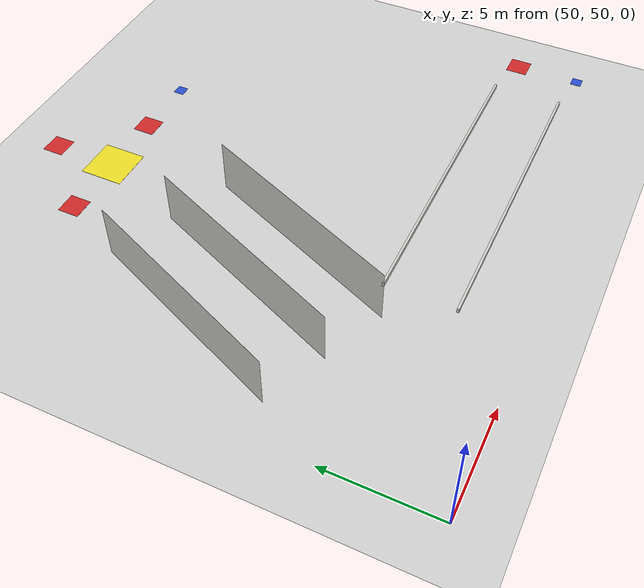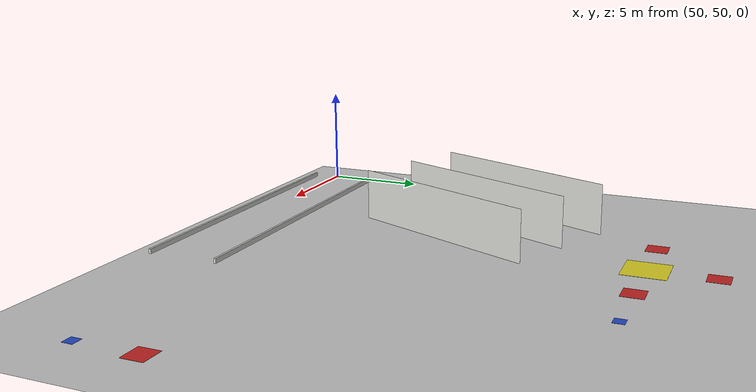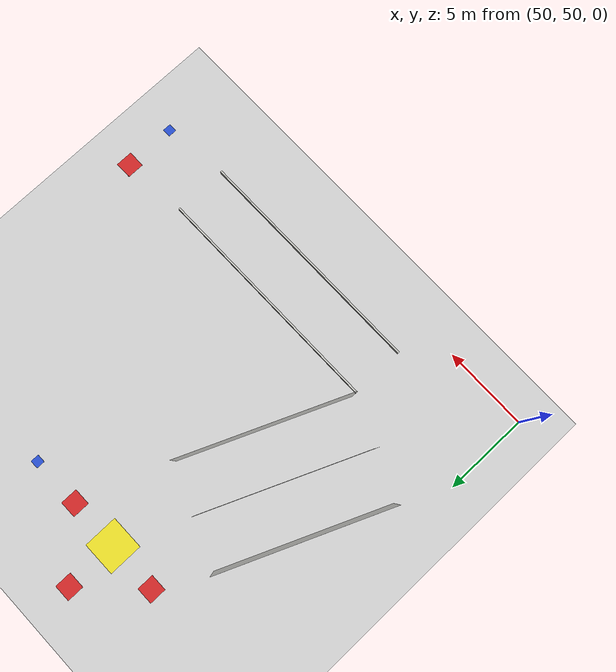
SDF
<sdf version="1.6">
 <world name="default">
  <model name="ground_plane">
   <static>1</static>
   <link name="link">
    <collision name="collision">
     <geometry><plane><normal>0 0 1</normal><size>100 100</size></plane></geometry>
     <surface><friction><ode><mu>100</mu><mu2>50</mu2></ode></friction></surface>
    </collision>
    <visual name="visual">
     <cast_shadows>0</cast_shadows>
     <geometry><plane><normal>0 0 1</normal><size>100 100</size></plane></geometry>
     <material>
      <script><uri>file://media/materials/scripts/gazebo.material</uri><name>Gazebo/Grey</name></script>
     </material>
    </visual>
   </link>
  </model>
  <model name="357">
   <pose>53.5147 62.4561 0 0 -0 0</pose>
   <link name="Wall_16">
    <collision name="Wall_16_Collision">
     <geometry><box><size>10.0198 0.001 2.5</size></box></geometry>
     <pose>0 0 1.25 0 -0 0</pose>
    </collision>
    <visual name="Wall_16_Visual">
     <pose>0 0 1.25 0 -0 0</pose>
     <geometry><box><size>10.0198 0.001 2.5</size></box></geometry>
     <material>
      <script><uri>file://media/materials/scripts/gazebo.material</uri><name>Gazebo/CeilingTiled</name></script>
      <ambient>0.435294 0.796078 0.67451 1</ambient>
     </material>
    </visual>
    <pose>0 -2e-06 0 0 -0 1.16829</pose>
   </link>
   <static>1</static>
  </model>
  <model name="357_clone">
   <pose>56.275 61.25 0 0 -0 0</pose>
   <link name="Wall_16">
    <collision name="Wall_16_Collision">
     <geometry><box><size>10.0198 0.001 2.5</size></box></geometry>
     <pose>0 0 1.25 0 -0 0</pose>
    </collision>
    <visual name="Wall_16_Visual">
     <pose>0 0 1.25 0 -0 0</pose>
     <geometry><box><size>10.0198 0.001 2.5</size></box></geometry>
     <material>
      <script><uri>file://media/materials/scripts/gazebo.material</uri><name>Gazebo/CeilingTiled</name></script>
      <ambient>0.435294 0.796078 0.67451 1</ambient>
     </material>
    </visual>
    <pose>0 -2e-06 0 0 -0 1.16829</pose>
   </link>
   <static>1</static>
  </model>
  <model name="357_clone_0">
   <pose>59.0353 60.0749 0 0 -0 0</pose>
   <link name="Wall_16">
    <collision name="Wall_16_Collision">
     <geometry><box><size>10.0198 0.001 2.5</size></box></geometry>
     <pose>0 0 1.25 0 -0 0</pose>
    </collision>
    <visual name="Wall_16_Visual">
     <pose>0 0 1.25 0 -0 0</pose>
     <geometry><box><size>10.0198 0.001 2.5</size></box></geometry>
     <material>
      <script><uri>file://media/materials/scripts/gazebo.material</uri><name>Gazebo/CeilingTiled</name></script>
      <ambient>0.435294 0.796078 0.67451 1</ambient>
     </material>
    </visual>
    <pose>0 -2e-06 0 0 -0 1.16829</pose>
   </link>
   <static>1</static>
  </model>
  <model name="my_objectT2">
   <link name="my_box">
    <inertial>
     <mass>1</mass>
     <inertia><ixx>1</ixx><ixy>0</ixy><ixz>0</ixz><iyy>100</iyy><iyz>0</iyz><izz>1</izz></inertia>
    </inertial>
    <collision name="my_box_collision"><geometry><box><size>2 2 0.01</size></box></geometry></collision>
    <visual name="my_box_visual">
     <geometry><box><size>2 2 0.01</size></box></geometry>
     <material>
      <script><name>Gazebo/Yellow</name><uri>file://media/materials/scripts/gazebo.material</uri></script>
     </material>
    </visual>
   </link>
   <pose>60.0006 69.9981 0.114899 -1.3e-05 2e-06 0.000344</pose>
  </model>
  <model name="my_objecteg2w2">
   <link name="my_box">
    <inertial>
     <mass>1</mass>
     <inertia><ixx>1</ixx><ixy>0</ixy><ixz>0</ixz><iyy>100</iyy><iyz>0</iyz><izz>1</izz></inertia>
    </inertial>
    <collision name="my_box_collision"><geometry><box><size>1 1 0.01</size></box></geometry></collision>
    <visual name="my_box_visual">
     <geometry><box><size>1 1 0.01</size></box></geometry>
     <material>
      <script><name>Gazebo/Red</name><uri>file://media/materials/scripts/gazebo.material</uri></script>
     </material>
    </visual>
   </link>
   <pose>75 55.5 0.104995 0 -0 0</pose>
  </model>
  <model name="my_objecteg4w1">
   <link name="my_box">
    <inertial>
     <mass>1</mass>
     <inertia><ixx>1</ixx><ixy>0</ixy><ixz>0</ixz><iyy>100</iyy><iyz>0</iyz><izz>1</izz></inertia>
    </inertial>
    <collision name="my_box_collision"><geometry><box><size>1 1 0.01</size></box></geometry></collision>
    <visual name="my_box_visual">
     <geometry><box><size>1 1 0.01</size></box></geometry>
     <material>
      <script><name>Gazebo/Red</name><uri>file://media/materials/scripts/gazebo.material</uri></script>
     </material>
    </visual>
   </link>
   <pose>57 70 0.104995 0 -0 0</pose>
  </model>
  <model name="my_objecteg4w2">
   <link name="my_box">
    <inertial>
     <mass>1</mass>
     <inertia><ixx>1</ixx><ixy>0</ixy><ixz>0</ixz><iyy>100</iyy><iyz>0</iyz><izz>1</izz></inertia>
    </inertial>
    <collision name="my_box_collision"><geometry><box><size>1 1 0.01</size></box></geometry></collision>
    <visual name="my_box_visual">
     <geometry><box><size>1 1 0.01</size></box></geometry>
     <material>
      <script><name>Gazebo/Red</name><uri>file://media/materials/scripts/gazebo.material</uri></script>
     </material>
    </visual>
   </link>
   <pose>60 73 0.104995 0 -0 0</pose>
  </model>
  <model name="my_objecteg4w3">
   <link name="my_box">
    <inertial>
     <mass>1</mass>
     <inertia><ixx>1</ixx><ixy>0</ixy><ixz>0</ixz><iyy>100</iyy><iyz>0</iyz><izz>1</izz></inertia>
    </inertial>
    <collision name="my_box_collision"><geometry><box><size>1 1 0.01</size></box></geometry></collision>
    <visual name="my_box_visual">
     <geometry><box><size>1 1 0.01</size></box></geometry>
     <material>
      <script><name>Gazebo/Red</name><uri>file://media/materials/scripts/gazebo.material</uri></script>
     </material>
    </visual>
   </link>
   <pose>63.0003 69.9997 0.114962 -1e-06 -0 0.000188</pose>
  </model>
  <model name="my_objectg5w1">
   <link name="my_box">
    <inertial>
     <mass>1</mass>
     <inertia><ixx>1</ixx><ixy>0</ixy><ixz>0</ixz><iyy>100</iyy><iyz>0</iyz><izz>1</izz></inertia>
    </inertial>
    <collision name="my_box_collision"><geometry><box><size>0.5 0.5 0.01</size></box></geometry></collision>
    <visual name="my_box_visual">
     <geometry><box><size>0.5 0.5 0.01</size></box></geometry>
     <material>
      <script><name>Gazebo/Blue</name><uri>file://media/materials/scripts/gazebo.material</uri></script>
     </material>
    </visual>
   </link>
   <pose>74.9931 52.5104 0.105001 1e-06 1e-06 -0.000536</pose>
  </model>
  <model name="my_objectg6w1">
   <link name="my_box">
    <inertial>
     <mass>1</mass>
     <inertia><ixx>1</ixx><ixy>0</ixy><ixz>0</ixz><iyy>100</iyy><iyz>0</iyz><izz>1</izz></inertia>
    </inertial>
    <collision name="my_box_collision"><geometry><box><size>0.5 0.5 0.01</size></box></geometry></collision>
    <visual name="my_box_visual">
     <geometry><box><size>0.5 0.5 0.01</size></box></geometry>
     <material>
      <script><name>Gazebo/Blue</name><uri>file://media/materials/scripts/gazebo.material</uri></script>
     </material>
    </visual>
   </link>
   <pose>59.9923 70.0118 0.104899 -1.3e-05 2e-06 -0.001203</pose>
  </model>
  <model name="my_objectg6w2">
   <link name="my_box">
    <inertial>
     <mass>1</mass>
     <inertia><ixx>1</ixx><ixy>0</ixy><ixz>0</ixz><iyy>100</iyy><iyz>0</iyz><izz>1</izz></inertia>
    </inertial>
    <collision name="my_box_collision"><geometry><box><size>0.5 0.5 0.01</size></box></geometry></collision>
    <visual name="my_box_visual">
     <geometry><box><size>0.5 0.5 0.01</size></box></geometry>
     <material>
      <script><name>Gazebo/Blue</name><uri>file://media/materials/scripts/gazebo.material</uri></script>
     </material>
    </visual>
   </link>
   <pose>62.9915 70.0127 0.10499 0 0 -0.000244</pose>
  </model>
  <model name="my_objectg6w3">
   <link name="my_box">
    <inertial>
     <mass>1</mass>
     <inertia><ixx>1</ixx><ixy>0</ixy><ixz>0</ixz><iyy>100</iyy><iyz>0</iyz><izz>1</izz></inertia>
    </inertial>
    <collision name="my_box_collision"><geometry><box><size>0.5 0.5 0.01</size></box></geometry></collision>
    <visual name="my_box_visual">
     <geometry><box><size>0.5 0.5 0.01</size></box></geometry>
     <material>
      <script><name>Gazebo/Blue</name><uri>file://media/materials/scripts/gazebo.material</uri></script>
     </material>
    </visual>
   </link>
   <pose>65.9906 70.0139 0.105001 2e-06 1e-06 -0.000566</pose>
  </model>
  <model name="358_0_0">
   <link name="Wall_18">
    <inertial>
     <mass>1</mass>
     <inertia><ixx>1</ixx><ixy>0</ixy><ixz>0</ixz><iyy>1</iyy><iyz>0</iyz><izz>1</izz></inertia>
    </inertial>
    <visual name="Wall_18_Visual">
     <pose>0 0 2 0 -0 0</pose>
     <geometry><box><size>13.45 0.1 0.2</size></box></geometry>
     <material>
      <script><uri>file://media/materials/scripts/gazebo.material</uri><name>Gazebo/CeilingTiled</name></script>
      <ambient>0.435 0.796 0.675 1</ambient>
      <diffuse>1 1 1 1</diffuse>
      <specular>0 0 0 1</specular>
      <emissive>1 1 0 1</emissive>
      <shader type="vertex"><normal_map>__default__</normal_map></shader>
     </material>
    </visual>
    <collision name="Wall_18_Collision">
     <pose>0 0 1.25 0 -0 0</pose>
     <geometry><box><size>13.45 0.001 2.5</size></box></geometry>
     <surface>
      <friction>
       <ode><mu>1</mu><mu2>1</mu2><fdir1>0 0 0</fdir1><slip1>0</slip1><slip2>0</slip2></ode>
       <torsional>
        <coefficient>1</coefficient>
        <patch_radius>0</patch_radius>
        <surface_radius>0</surface_radius>
        <use_patch_radius>1</use_patch_radius>
        <ode><slip>0</slip></ode>
       </torsional>
      </friction>
      <bounce><restitution_coefficient>0</restitution_coefficient><threshold>1e+06</threshold></bounce>
      <contact>
       <collide_without_contact>0</collide_without_contact>
       <collide_without_contact_bitmask>1</collide_without_contact_bitmask>
       <collide_bitmask>1</collide_bitmask>
       <ode>
        <soft_cfm>0</soft_cfm>
        <soft_erp>0.2</soft_erp>
        <kp>1e+13</kp>
        <kd>1</kd>
        <max_vel>0.01</max_vel>
        <min_depth>0</min_depth>
       </ode>
       <bullet>
        <split_impulse>1</split_impulse>
        <split_impulse_penetration_threshold>-0.01</split_impulse_penetration_threshold>
        <soft_cfm>0</soft_cfm>
        <soft_erp>0.2</soft_erp>
        <kp>1e+13</kp>
        <kd>1</kd>
       </bullet>
      </contact>
     </surface>
    </collision>
   </link>
   <static>1</static>
   <pose>63.775 52.5 0 0 -0 0</pose>
  </model>
  <model name="358_clone_0_0">
   <link name="Wall_18">
    <inertial>
     <mass>1</mass>
     <inertia><ixx>1</ixx><ixy>0</ixy><ixz>0</ixz><iyy>1</iyy><iyz>0</iyz><izz>1</izz></inertia>
    </inertial>
    <visual name="Wall_18_Visual">
     <pose>0 0 2 0 -0 0</pose>
     <geometry><box><size>13.45 0.1 0.2</size></box></geometry>
     <material>
      <script><uri>file://media/materials/scripts/gazebo.material</uri><name>Gazebo/CeilingTiled</name></script>
      <ambient>0.435 0.796 0.675 1</ambient>
      <diffuse>1 1 1 1</diffuse>
      <specular>0 0 0 1</specular>
      <emissive>1 1 0 1</emissive>
      <shader type="vertex"><normal_map>__default__</normal_map></shader>
     </material>
    </visual>
    <collision name="Wall_18_Collision">
     <pose>0 0 1.25 0 -0 0</pose>
     <geometry><box><size>13.45 0.001 2.5</size></box></geometry>
     <surface>
      <friction>
       <ode><mu>1</mu><mu2>1</mu2><fdir1>0 0 0</fdir1><slip1>0</slip1><slip2>0</slip2></ode>
       <torsional>
        <coefficient>1</coefficient>
        <patch_radius>0</patch_radius>
        <surface_radius>0</surface_radius>
        <use_patch_radius>1</use_patch_radius>
        <ode><slip>0</slip></ode>
       </torsional>
      </friction>
      <bounce><restitution_coefficient>0</restitution_coefficient><threshold>1e+06</threshold></bounce>
      <contact>
       <collide_without_contact>0</collide_without_contact>
       <collide_without_contact_bitmask>1</collide_without_contact_bitmask>
       <collide_bitmask>1</collide_bitmask>
       <ode>
        <soft_cfm>0</soft_cfm>
        <soft_erp>0.2</soft_erp>
        <kp>1e+13</kp>
        <kd>1</kd>
        <max_vel>0.01</max_vel>
        <min_depth>0</min_depth>
       </ode>
       <bullet>
        <split_impulse>1</split_impulse>
        <split_impulse_penetration_threshold>-0.01</split_impulse_penetration_threshold>
        <soft_cfm>0</soft_cfm>
        <soft_erp>0.2</soft_erp>
        <kp>1e+13</kp>
        <kd>1</kd>
       </bullet>
      </contact>
     </surface>
    </collision>
   </link>
   <static>1</static>
   <pose>63.775 55.5 0 0 -0 0</pose>
  </model>
 </world>
</sdf>
